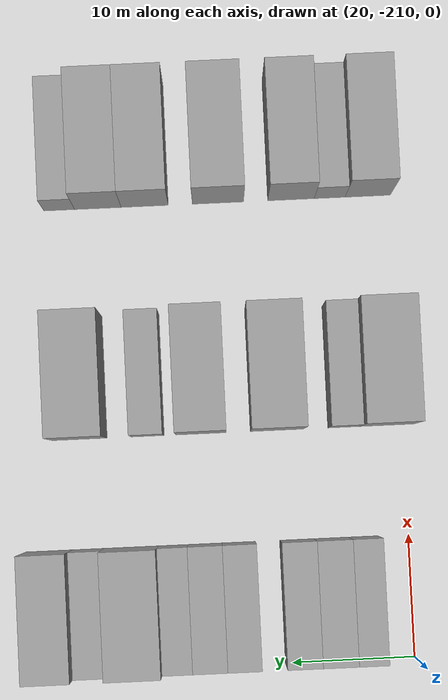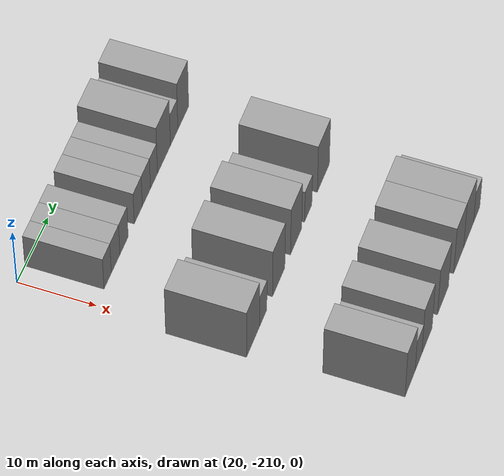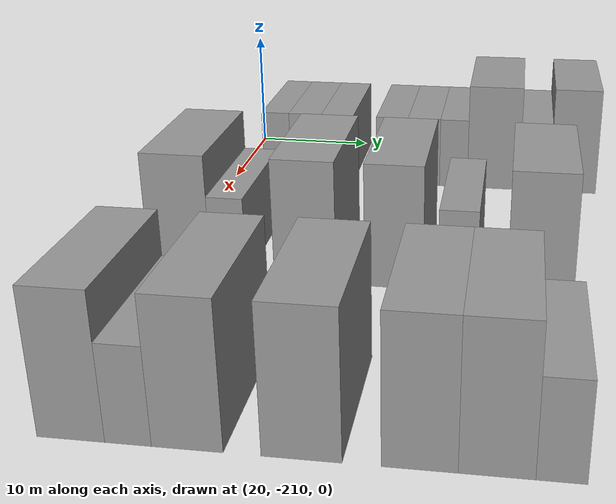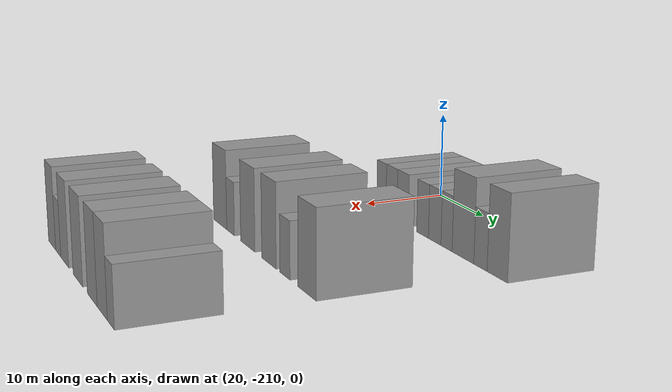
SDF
<sdf version="1.6">
 <world name="default">
  <model name="building_10">
   <static>1</static>
   <pose>25.0000 -206.2561 0 0.000000 0.000000 0.000000</pose>
   <link name="link">
    <pose>0 0 3.00 0 0 0</pose>
    <collision name="collision"><geometry><box><size>10.0000 2.4000 6.0000</size></box></geometry></collision>
    <visual name="visual">
     <cast_shadows>0</cast_shadows>
     <geometry><box><size>10.0000 2.4000 6.0000</size></box></geometry>
     <material>
      <script>
       <uri>model://grey_wall/materials/scripts</uri>
       <uri>model://grey_wall/materials/textures</uri>
       <name>vrc/grey_wall</name>
      </script>
     </material>
    </visual>
   </link>
  </model>
  <model name="building_11">
   <static>1</static>
   <pose>25.0000 -203.6401 0 0.000000 0.000000 0.000000</pose>
   <link name="link">
    <pose>0 0 3.00 0 0 0</pose>
    <collision name="collision"><geometry><box><size>10.0000 2.8320 6.0000</size></box></geometry></collision>
    <visual name="visual">
     <cast_shadows>0</cast_shadows>
     <geometry><box><size>10.0000 2.8320 6.0000</size></box></geometry>
     <material>
      <script>
       <uri>model://grey_wall/materials/scripts</uri>
       <uri>model://grey_wall/materials/textures</uri>
       <name>vrc/grey_wall</name>
      </script>
     </material>
    </visual>
   </link>
  </model>
  <model name="building_12">
   <static>1</static>
   <pose>25.0000 -200.8274 0 0.000000 0.000000 0.000000</pose>
   <link name="link">
    <pose>0 0 3.00 0 0 0</pose>
    <collision name="collision"><geometry><box><size>10.0000 2.7935 6.0000</size></box></geometry></collision>
    <visual name="visual">
     <cast_shadows>0</cast_shadows>
     <geometry><box><size>10.0000 2.7935 6.0000</size></box></geometry>
     <material>
      <script>
       <uri>model://grey_wall/materials/scripts</uri>
       <uri>model://grey_wall/materials/textures</uri>
       <name>vrc/grey_wall</name>
      </script>
     </material>
    </visual>
   </link>
  </model>
  <model name="building_13">
   <static>1</static>
   <pose>25.0000 -196.0724 0 0.000000 0.000000 0.000000</pose>
   <link name="link">
    <pose>0 0 3.00 0 0 0</pose>
    <collision name="collision"><geometry><box><size>10.0000 2.7164 6.0000</size></box></geometry></collision>
    <visual name="visual">
     <cast_shadows>0</cast_shadows>
     <geometry><box><size>10.0000 2.7164 6.0000</size></box></geometry>
     <material>
      <script>
       <uri>model://grey_wall/materials/scripts</uri>
       <uri>model://grey_wall/materials/textures</uri>
       <name>vrc/grey_wall</name>
      </script>
     </material>
    </visual>
   </link>
  </model>
  <model name="building_14">
   <static>1</static>
   <pose>25.0000 -193.3266 0 0.000000 0.000000 0.000000</pose>
   <link name="link">
    <pose>0 0 3.00 0 0 0</pose>
    <collision name="collision"><geometry><box><size>10.0000 2.7752 6.0000</size></box></geometry></collision>
    <visual name="visual">
     <cast_shadows>0</cast_shadows>
     <geometry><box><size>10.0000 2.7752 6.0000</size></box></geometry>
     <material>
      <script>
       <uri>model://grey_wall/materials/scripts</uri>
       <uri>model://grey_wall/materials/textures</uri>
       <name>vrc/grey_wall</name>
      </script>
     </material>
    </visual>
   </link>
  </model>
  <model name="building_15">
   <static>1</static>
   <pose>25.0000 -190.7367 0 0.000000 0.000000 0.000000</pose>
   <link name="link">
    <pose>0 0 3.00 0 0 0</pose>
    <collision name="collision"><geometry><box><size>10.0000 2.4047 6.0000</size></box></geometry></collision>
    <visual name="visual">
     <cast_shadows>0</cast_shadows>
     <geometry><box><size>10.0000 2.4047 6.0000</size></box></geometry>
     <material>
      <script>
       <uri>model://grey_wall/materials/scripts</uri>
       <uri>model://grey_wall/materials/textures</uri>
       <name>vrc/grey_wall</name>
      </script>
     </material>
    </visual>
   </link>
  </model>
  <model name="building_16">
   <static>1</static>
   <pose>25.0000 -187.3054 0 0.000000 0.000000 0.000000</pose>
   <link name="link">
    <pose>0 0 4.50 0 0 0</pose>
    <collision name="collision"><geometry><box><size>10.0000 4.4580 9.0000</size></box></geometry></collision>
    <visual name="visual">
     <cast_shadows>0</cast_shadows>
     <geometry><box><size>10.0000 4.4580 9.0000</size></box></geometry>
     <material>
      <script>
       <uri>model://grey_wall/materials/scripts</uri>
       <uri>model://grey_wall/materials/textures</uri>
       <name>vrc/grey_wall</name>
      </script>
     </material>
    </visual>
   </link>
  </model>
  <model name="building_17">
   <static>1</static>
   <pose>25.0000 -183.7864 0 0.000000 0.000000 0.000000</pose>
   <link name="link">
    <pose>0 0 3.00 0 0 0</pose>
    <collision name="collision"><geometry><box><size>10.0000 2.5800 6.0000</size></box></geometry></collision>
    <visual name="visual">
     <cast_shadows>0</cast_shadows>
     <geometry><box><size>10.0000 2.5800 6.0000</size></box></geometry>
     <material>
      <script>
       <uri>model://grey_wall/materials/scripts</uri>
       <uri>model://grey_wall/materials/textures</uri>
       <name>vrc/grey_wall</name>
      </script>
     </material>
    </visual>
   </link>
  </model>
  <model name="building_18">
   <static>1</static>
   <pose>25.0000 -180.5809 0 0.000000 0.000000 0.000000</pose>
   <link name="link">
    <pose>0 0 4.50 0 0 0</pose>
    <collision name="collision"><geometry><box><size>10.0000 3.8311 9.0000</size></box></geometry></collision>
    <visual name="visual">
     <cast_shadows>0</cast_shadows>
     <geometry><box><size>10.0000 3.8311 9.0000</size></box></geometry>
     <material>
      <script>
       <uri>model://grey_wall/materials/scripts</uri>
       <uri>model://grey_wall/materials/textures</uri>
       <name>vrc/grey_wall</name>
      </script>
     </material>
    </visual>
   </link>
  </model>
  <model name="building_131">
   <static>1</static>
   <pose>44.0000 -208.6429 0 0.000000 0.000000 0.000000</pose>
   <link name="link">
    <pose>0 0 4.50 0 0 0</pose>
    <collision name="collision"><geometry><box><size>10.0000 4.4991 9.0000</size></box></geometry></collision>
    <visual name="visual">
     <cast_shadows>0</cast_shadows>
     <geometry><box><size>10.0000 4.4991 9.0000</size></box></geometry>
     <material>
      <script>
       <uri>model://grey_wall/materials/scripts</uri>
       <uri>model://grey_wall/materials/textures</uri>
       <name>vrc/grey_wall</name>
      </script>
     </material>
    </visual>
   </link>
  </model>
  <model name="building_132">
   <static>1</static>
   <pose>44.0000 -205.1088 0 0.000000 0.000000 0.000000</pose>
   <link name="link">
    <pose>0 0 3.00 0 0 0</pose>
    <collision name="collision"><geometry><box><size>10.0000 2.5690 6.0000</size></box></geometry></collision>
    <visual name="visual">
     <cast_shadows>0</cast_shadows>
     <geometry><box><size>10.0000 2.5690 6.0000</size></box></geometry>
     <material>
      <script>
       <uri>model://grey_wall/materials/scripts</uri>
       <uri>model://grey_wall/materials/textures</uri>
       <name>vrc/grey_wall</name>
      </script>
     </material>
    </visual>
   </link>
  </model>
  <model name="building_133">
   <static>1</static>
   <pose>44.0000 -199.6345 0 0.000000 0.000000 0.000000</pose>
   <link name="link">
    <pose>0 0 4.50 0 0 0</pose>
    <collision name="collision"><geometry><box><size>10.0000 4.3795 9.0000</size></box></geometry></collision>
    <visual name="visual">
     <cast_shadows>0</cast_shadows>
     <geometry><box><size>10.0000 4.3795 9.0000</size></box></geometry>
     <material>
      <script>
       <uri>model://grey_wall/materials/scripts</uri>
       <uri>model://grey_wall/materials/textures</uri>
       <name>vrc/grey_wall</name>
      </script>
     </material>
    </visual>
   </link>
  </model>
  <model name="building_134">
   <static>1</static>
   <pose>44.0000 -193.4110 0 0.000000 0.000000 0.000000</pose>
   <link name="link">
    <pose>0 0 4.50 0 0 0</pose>
    <collision name="collision"><geometry><box><size>10.0000 4.0676 9.0000</size></box></geometry></collision>
    <visual name="visual">
     <cast_shadows>0</cast_shadows>
     <geometry><box><size>10.0000 4.0676 9.0000</size></box></geometry>
     <material>
      <script>
       <uri>model://grey_wall/materials/scripts</uri>
       <uri>model://grey_wall/materials/textures</uri>
       <name>vrc/grey_wall</name>
      </script>
     </material>
    </visual>
   </link>
  </model>
  <model name="building_135">
   <static>1</static>
   <pose>44.0000 -189.0309 0 0.000000 0.000000 0.000000</pose>
   <link name="link">
    <pose>0 0 3.00 0 0 0</pose>
    <collision name="collision"><geometry><box><size>10.0000 2.6925 6.0000</size></box></geometry></collision>
    <visual name="visual">
     <cast_shadows>0</cast_shadows>
     <geometry><box><size>10.0000 2.6925 6.0000</size></box></geometry>
     <material>
      <script>
       <uri>model://grey_wall/materials/scripts</uri>
       <uri>model://grey_wall/materials/textures</uri>
       <name>vrc/grey_wall</name>
      </script>
     </material>
    </visual>
   </link>
  </model>
  <model name="building_136">
   <static>1</static>
   <pose>44.0000 -183.4459 0 0.000000 0.000000 0.000000</pose>
   <link name="link">
    <pose>0 0 4.50 0 0 0</pose>
    <collision name="collision"><geometry><box><size>10.0000 4.4775 9.0000</size></box></geometry></collision>
    <visual name="visual">
     <cast_shadows>0</cast_shadows>
     <geometry><box><size>10.0000 4.4775 9.0000</size></box></geometry>
     <material>
      <script>
       <uri>model://grey_wall/materials/scripts</uri>
       <uri>model://grey_wall/materials/textures</uri>
       <name>vrc/grey_wall</name>
      </script>
     </material>
    </visual>
   </link>
  </model>
  <model name="building_239">
   <static>1</static>
   <pose>63.0000 -208.0524 0 0.000000 0.000000 0.000000</pose>
   <link name="link">
    <pose>0 0 4.50 0 0 0</pose>
    <collision name="collision"><geometry><box><size>10.0000 3.7527 9.0000</size></box></geometry></collision>
    <visual name="visual">
     <cast_shadows>0</cast_shadows>
     <geometry><box><size>10.0000 3.7527 9.0000</size></box></geometry>
     <material>
      <script>
       <uri>model://grey_wall/materials/scripts</uri>
       <uri>model://grey_wall/materials/textures</uri>
       <name>vrc/grey_wall</name>
      </script>
     </material>
    </visual>
   </link>
  </model>
  <model name="building_240">
   <static>1</static>
   <pose>63.0000 -204.9037 0 0.000000 0.000000 0.000000</pose>
   <link name="link">
    <pose>0 0 3.00 0 0 0</pose>
    <collision name="collision"><geometry><box><size>10.0000 2.5447 6.0000</size></box></geometry></collision>
    <visual name="visual">
     <cast_shadows>0</cast_shadows>
     <geometry><box><size>10.0000 2.5447 6.0000</size></box></geometry>
     <material>
      <script>
       <uri>model://grey_wall/materials/scripts</uri>
       <uri>model://grey_wall/materials/textures</uri>
       <name>vrc/grey_wall</name>
      </script>
     </material>
    </visual>
   </link>
  </model>
  <model name="building_241">
   <static>1</static>
   <pose>63.0000 -201.7048 0 0.000000 0.000000 0.000000</pose>
   <link name="link">
    <pose>0 0 4.50 0 0 0</pose>
    <collision name="collision"><geometry><box><size>10.0000 3.8530 9.0000</size></box></geometry></collision>
    <visual name="visual">
     <cast_shadows>0</cast_shadows>
     <geometry><box><size>10.0000 3.8530 9.0000</size></box></geometry>
     <material>
      <script>
       <uri>model://grey_wall/materials/scripts</uri>
       <uri>model://grey_wall/materials/textures</uri>
       <name>vrc/grey_wall</name>
      </script>
     </material>
    </visual>
   </link>
  </model>
  <model name="building_242">
   <static>1</static>
   <pose>63.0000 -195.6646 0 0.000000 0.000000 0.000000</pose>
   <link name="link">
    <pose>0 0 4.50 0 0 0</pose>
    <collision name="collision"><geometry><box><size>10.0000 4.2275 9.0000</size></box></geometry></collision>
    <visual name="visual">
     <cast_shadows>0</cast_shadows>
     <geometry><box><size>10.0000 4.2275 9.0000</size></box></geometry>
     <material>
      <script>
       <uri>model://grey_wall/materials/scripts</uri>
       <uri>model://grey_wall/materials/textures</uri>
       <name>vrc/grey_wall</name>
      </script>
     </material>
    </visual>
   </link>
  </model>
  <model name="building_243">
   <static>1</static>
   <pose>63.0000 -189.6024 0 0.000000 0.000000 0.000000</pose>
   <link name="link">
    <pose>0 0 4.50 0 0 0</pose>
    <collision name="collision"><geometry><box><size>10.0000 3.8969 9.0000</size></box></geometry></collision>
    <visual name="visual">
     <cast_shadows>0</cast_shadows>
     <geometry><box><size>10.0000 3.8969 9.0000</size></box></geometry>
     <material>
      <script>
       <uri>model://grey_wall/materials/scripts</uri>
       <uri>model://grey_wall/materials/textures</uri>
       <name>vrc/grey_wall</name>
      </script>
     </material>
    </visual>
   </link>
  </model>
  <model name="building_244">
   <static>1</static>
   <pose>63.0000 -185.7312 0 0.000000 0.000000 0.000000</pose>
   <link name="link">
    <pose>0 0 4.50 0 0 0</pose>
    <collision name="collision"><geometry><box><size>10.0000 3.8454 9.0000</size></box></geometry></collision>
    <visual name="visual">
     <cast_shadows>0</cast_shadows>
     <geometry><box><size>10.0000 3.8454 9.0000</size></box></geometry>
     <material>
      <script>
       <uri>model://grey_wall/materials/scripts</uri>
       <uri>model://grey_wall/materials/textures</uri>
       <name>vrc/grey_wall</name>
      </script>
     </material>
    </visual>
   </link>
  </model>
  <model name="building_245">
   <static>1</static>
   <pose>63.0000 -182.5381 0 0.000000 0.000000 0.000000</pose>
   <link name="link">
    <pose>0 0 3.00 0 0 0</pose>
    <collision name="collision"><geometry><box><size>10.0000 2.5407 6.0000</size></box></geometry></collision>
    <visual name="visual">
     <cast_shadows>0</cast_shadows>
     <geometry><box><size>10.0000 2.5407 6.0000</size></box></geometry>
     <material>
      <script>
       <uri>model://grey_wall/materials/scripts</uri>
       <uri>model://grey_wall/materials/textures</uri>
       <name>vrc/grey_wall</name>
      </script>
     </material>
    </visual>
   </link>
  </model>
 </world>
</sdf>
